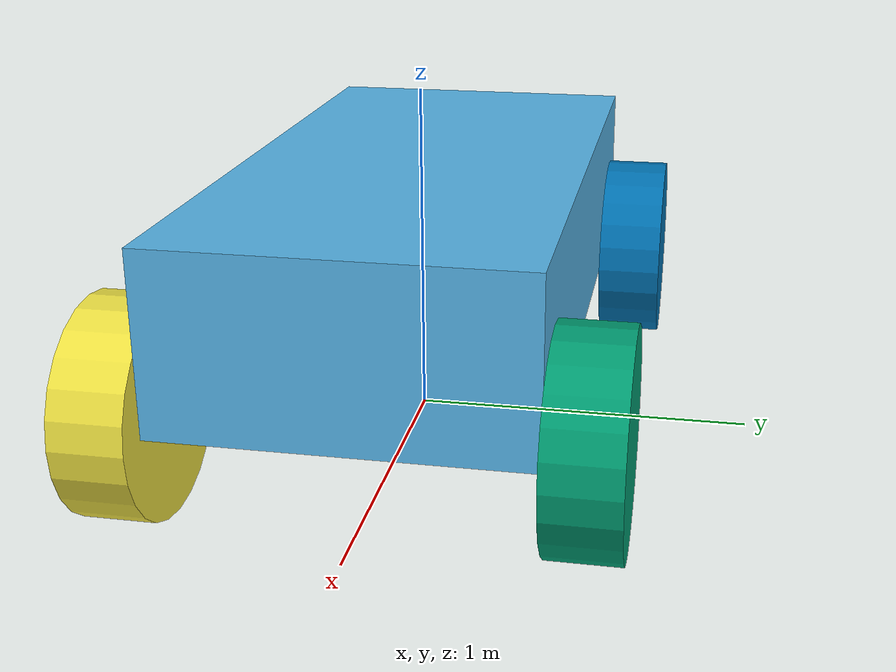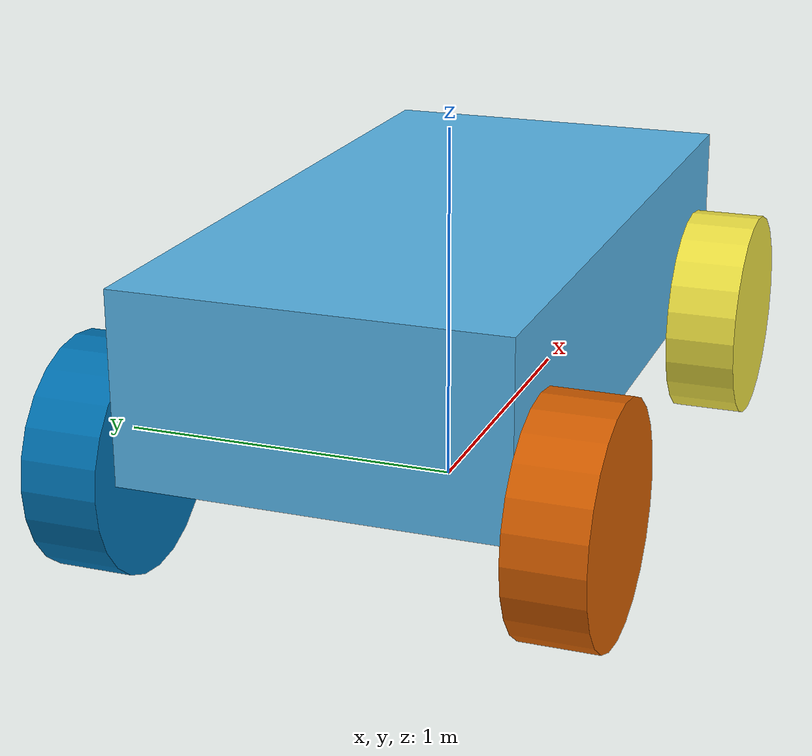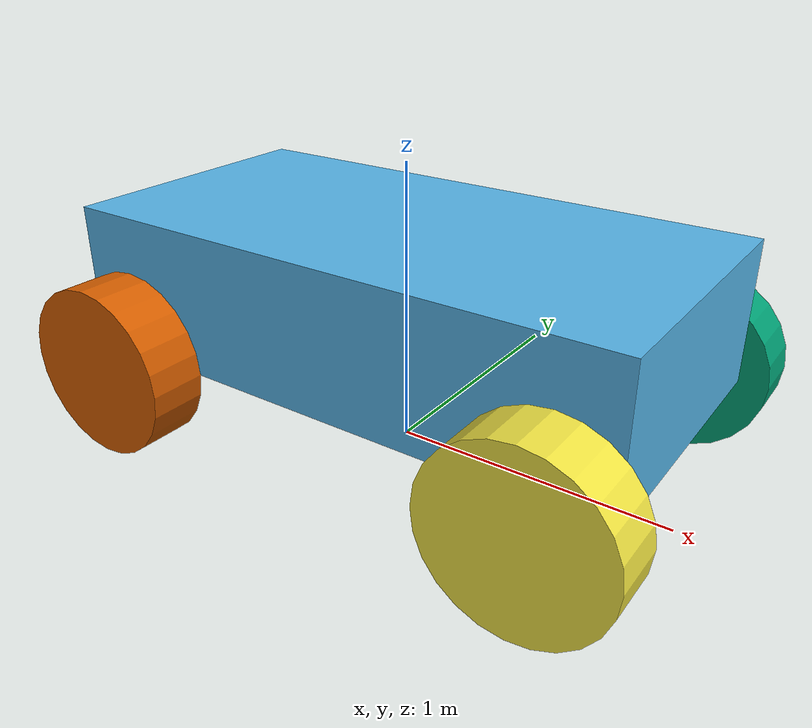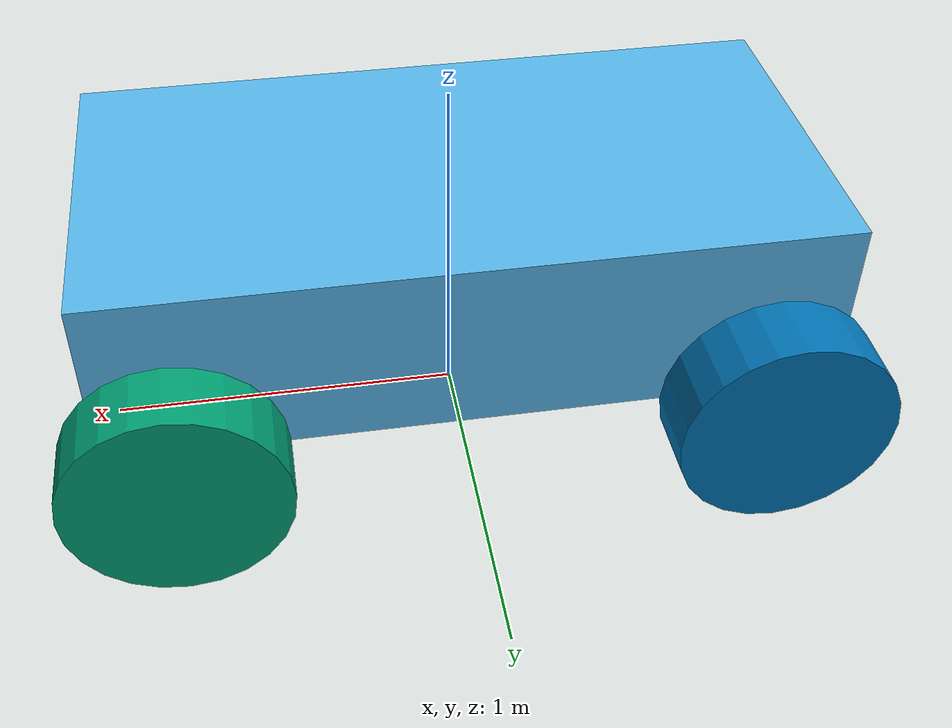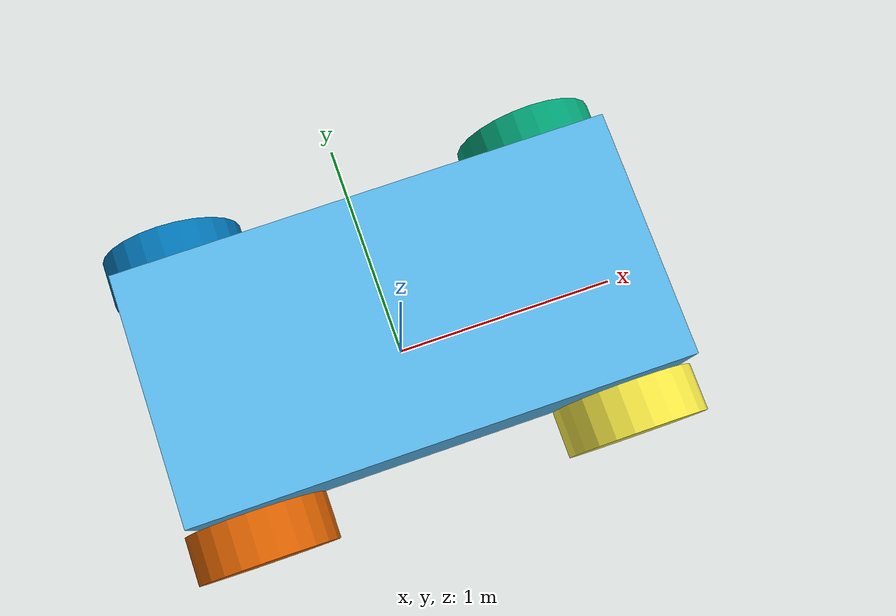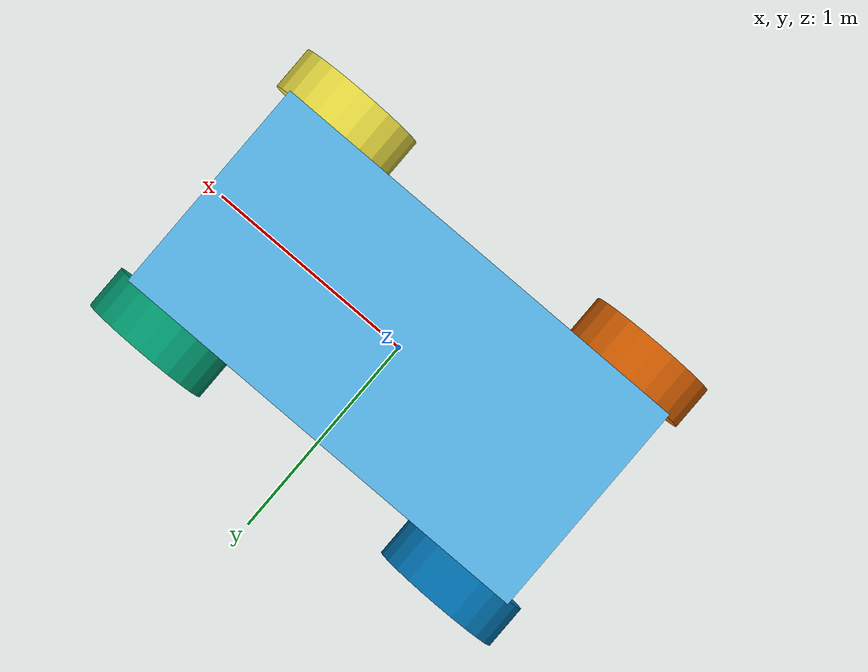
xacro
<?xml version="1.0"?>
<robot name="car" xmlns:xacro="http://ros.org/wiki/xacro">

    <!-- 根 link：地面点，z=0 -->
    <link name="base_footprint"/>

    <!-- 把 base_link 抬到 z=0.55，让轮子底部正好落在地面 -->
    <joint name="base_footprint_to_base" type="fixed">
        <parent link="base_footprint"/>
        <child link="base_link"/>
        <origin xyz="0 0 0.55" rpy="0 0 0"/>
    </joint>

    <link name="base_link">
        <visual>
            <origin xyz="0 0 0" rpy="0 0 0"/>
            <geometry><box size="2 1 0.5"/></geometry>
        </visual>
        <collision>
            <origin xyz="0 0 0" rpy="0 0 0"/>
            <geometry><box size="2 1 0.5"/></geometry>
        </collision>
    </link>

    <xacro:macro name="wheel" params="name x y">
        <link name="${name}_link">
            <visual>
                <origin xyz="0 0 0" rpy="1.5708 0 0"/>
                <geometry><cylinder radius="0.3" length="0.2"/></geometry>
            </visual>
            <collision>
                <origin xyz="0 0 0" rpy="1.5708 0 0"/>
                <geometry><cylinder radius="0.3" length="0.2"/></geometry>
            </collision>
        </link>

        <joint name="base_to_${name}" type="continuous">
            <parent link="base_link"/>
            <child link="${name}_link"/>
            <origin xyz="${x} ${y} -0.25" rpy="0 0 0"/>
            <axis xyz="0 1 0"/>
        </joint>
    </xacro:macro>

    <xacro:wheel name="front_left"  x="0.8"  y="0.6"/>
    <xacro:wheel name="front_right" x="0.8"  y="-0.6"/>
    <xacro:wheel name="rear_left"   x="-0.8" y="0.6"/>
    <xacro:wheel name="rear_right"  x="-0.8" y="-0.6"/>

    <gazebo>
        <plugin name="diff_drive" filename="libgazebo_ros_diff_drive.so">
            <update_rate>50</update_rate>

            <left_joint>base_to_front_left</left_joint>
            <left_joint>base_to_rear_left</left_joint>
            <right_joint>base_to_front_right</right_joint>
            <right_joint>base_to_rear_right</right_joint>

            <wheel_separation>1.2</wheel_separation>
            <wheel_radius>0.3</wheel_radius>

            <command_topic>cmd_vel</command_topic>
            <odometry_topic>odom</odometry_topic>
            <odometry_frame>odom</odometry_frame>
            <robot_base_frame>base_footprint</robot_base_frame>
        </plugin>
    </gazebo>
</robot>
